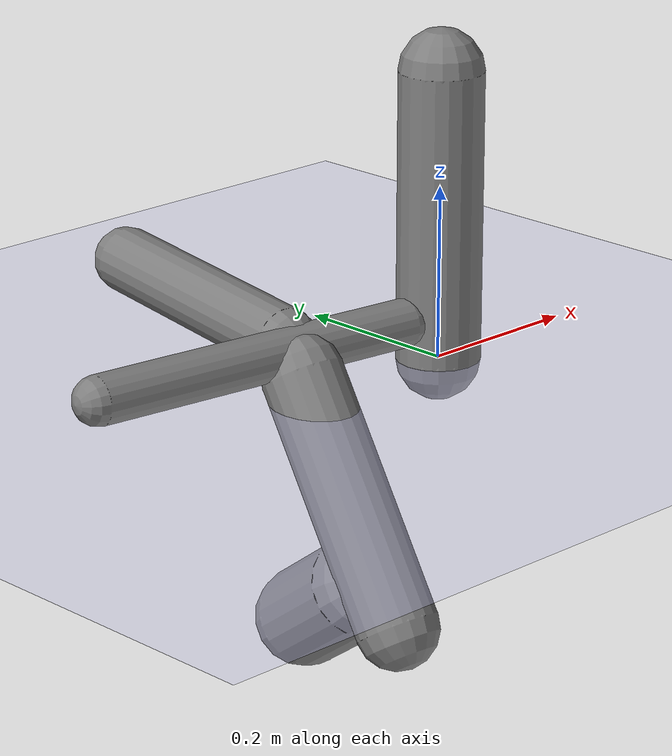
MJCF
<?xml version='1.0' encoding='UTF-8'?>
<mujoco model="robot_model">
  <worldbody>
    <light name="light" pos="0 -3 10" dir="0 0.5 -1" diffuse=".8 .8 .8" specular="0.1 0.1 0.1"/>
    <geom name="floor" type="plane" size="10.0 10.0 0.1" pos="0 0 0" rgba="0.8 0.8 1 1" contype="2" conaffinity="1"/>
    <body name="limb0" pos="0 0 0">
      <geom name="limb0_geom" type="capsule" fromto="0 0 0 0 0 0.33254567950696534" size="0.04852927675564238" density="680.2184858101424" contype="1" conaffinity="2"/>
      <site type="sphere" size="0.01" name="limb0_site0" pos="-0.04818714542865164 0.005752366283861697 0.05058150546810727" quat="0.7071067811865476 -0.08381615138565905 -0.7021216794594055 0.0"/>
      <freejoint name="limb0_root"/>
      <body name="limb1" pos="-0.04818714542865164 0.005752366283861697 0.05058150546810727" quat="0.7071067811865476 -0.08381615138565905 -0.7021216794594055 0.0">
        <geom name="limb1_geom" type="capsule" fromto="0 0 0 0 0 0.4119779083954327" size="0.027784373909289378" density="1094.7449235337838" contype="1" conaffinity="2"/>
        <site type="sphere" size="0.01" name="limb1_site0" pos="0.004726814848962095 0.02737934723317617 0.14662549990165907" quat="0.7071067811865476 -0.6967989329630775 0.12029649629775836 0.0"/>
        <site type="sphere" size="0.01" name="limb1_site1" pos="-0.024498592220438674 -0.013106884173893576 0.1557191569856172" quat="0.7071067811865476 0.3335675912599258 -0.6234842917516454 0.0"/>
        <body name="limb2" pos="0.004726814848962095 0.02737934723317617 0.14662549990165907" quat="0.7071067811865476 -0.6967989329630775 0.12029649629775836 0.0">
          <geom name="limb2_geom" type="capsule" fromto="0 0 0 0 0 0.30677663016450707" size="0.03844672947297005" density="448.7283854265311" contype="1" conaffinity="2"/>
          <joint name="joint_limb1_limb2_0" type="hinge" axis="1 0 0" range="-48.18281063347258 48.18281063347258" damping="5.0"/>
        </body>
        <body name="limb3" pos="-0.024498592220438674 -0.013106884173893576 0.1557191569856172" quat="0.7071067811865476 0.3335675912599258 -0.6234842917516454 0.0">
          <geom name="limb3_geom" type="capsule" fromto="0 0 0 0 0 0.2945753084567598" size="0.04671395078915875" density="778.1055387539296" contype="1" conaffinity="2"/>
          <site type="sphere" size="0.01" name="limb3_site0" pos="-0.025416733822742458 0.03919416844526498 0.23398434271952442" quat="0.7071067811865476 -0.5932802047872723 -0.3847318528632275 0.0"/>
          <body name="limb4" pos="-0.025416733822742458 0.03919416844526498 0.23398434271952442" quat="0.7071067811865476 -0.5932802047872723 -0.3847318528632275 0.0">
            <geom name="limb4_geom" type="capsule" fromto="0 0 0 0 0 0.13637614523352834" size="0.05686266723805684" density="690.3532618611748" contype="1" conaffinity="2"/>
            <joint name="joint_limb3_limb4_0" type="hinge" axis="0 1 0" range="-97.96950013480941 97.96950013480941" damping="5.0"/>
          </body>
          <joint name="joint_limb1_limb3_0" type="hinge" axis="0 1 0" range="-119.32645892784801 119.32645892784801" damping="5.0"/>
        </body>
        <joint name="joint_limb0_limb1_0" type="hinge" axis="0 1 0" range="-79.43746025127588 79.43746025127588" damping="5.0"/>
      </body>
    </body>
  </worldbody>
  <actuator>
    <position name="position_actuator_joint_limb0_limb1_0" joint="joint_limb0_limb1_0" gear="1.5835672608966855" inheritrange="1" forcerange="-5.960783523172352 5.960783523172352" forcelimited="true" kp="100.0"/>
    <position name="position_actuator_joint_limb1_limb2_0" joint="joint_limb1_limb2_0" gear="1.8903065910928873" inheritrange="1" forcerange="-3.7303749099213395 3.7303749099213395" forcelimited="true" kp="100.0"/>
    <position name="position_actuator_joint_limb1_limb3_0" joint="joint_limb1_limb3_0" gear="1.1378149002412088" inheritrange="1" forcerange="-9.518097602304797 9.518097602304797" forcelimited="true" kp="100.0"/>
    <position name="position_actuator_joint_limb3_limb4_0" joint="joint_limb3_limb4_0" gear="0.9364266391070425" inheritrange="1" forcerange="-7.440066834144852 7.440066834144852" forcelimited="true" kp="100.0"/>
  </actuator>
  <contact>
    <pair geom1="limb0_geom" geom2="limb1_geom"/>
    <pair geom1="limb1_geom" geom2="limb2_geom"/>
    <pair geom1="limb1_geom" geom2="limb3_geom"/>
    <pair geom1="limb3_geom" geom2="limb4_geom"/>
  </contact>
</mujoco>
